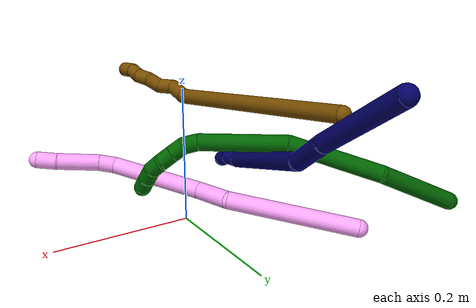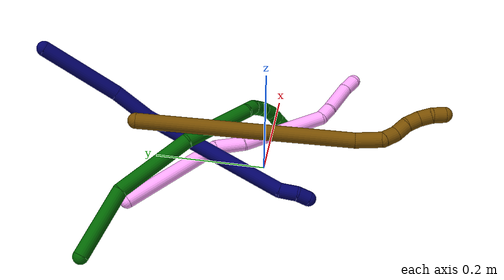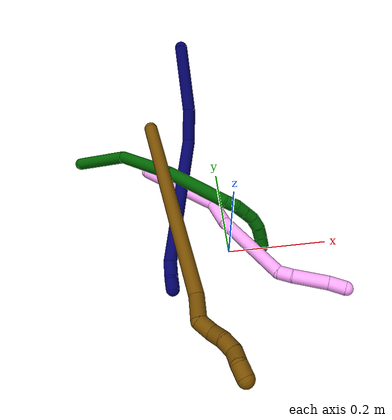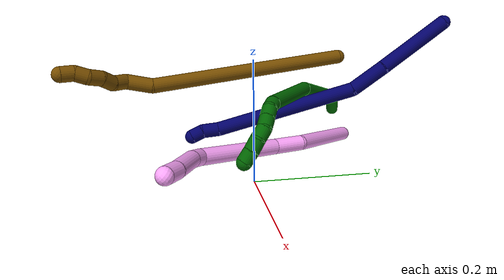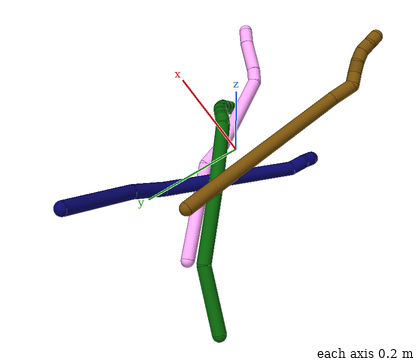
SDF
<sdf version="1.7">
 <world name="default">
  <model name="4">
   <static>0</static>
   <link name="4">
    <collision name="collision-cylinder-e_1_1_4">
     <pose>0.069429 -0.000526 0.059388 0.008852 0.863171 0.004077</pose>
     <geometry><cylinder><radius>0.0125</radius><length>0.18273</length></cylinder></geometry>
     <surface>
      <friction><ode><mu>1.16</mu><mu2>1.16</mu2><slip1>0</slip1><slip2>0</slip2></ode></friction>
      <contact><ode><kp>1e+06</kp><kd>1</kd><max_vel>0</max_vel><min_depth>0.001</min_depth></ode></contact>
     </surface>
    </collision>
    <visual name="visual-cylinder-e_1_1_4">
     <pose>0.069429 -0.000526 0.059388 0.008852 0.863171 0.004077</pose>
     <geometry><cylinder><radius>0.0125</radius><length>0.18273</length></cylinder></geometry>
     <material><ambient>1 0.65098 0.996078 1</ambient></material>
    </visual>
    <collision name="collision-cylinder-e_2_4_5">
     <pose>0.152251 -0.011666 0.137814 0.508608 0.550959 0.146684</pose>
     <geometry><cylinder><radius>0.0125</radius><length>0.051167</length></cylinder></geometry>
     <surface>
      <friction><ode><mu>1.16</mu><mu2>1.16</mu2><slip1>0</slip1><slip2>0</slip2></ode></friction>
      <contact><ode><kp>1e+06</kp><kd>1</kd><max_vel>0</max_vel><min_depth>0.001</min_depth></ode></contact>
     </surface>
    </collision>
    <visual name="visual-cylinder-e_2_4_5">
     <pose>0.152251 -0.011666 0.137814 0.508608 0.550959 0.146684</pose>
     <geometry><cylinder><radius>0.0125</radius><length>0.051167</length></cylinder></geometry>
     <material><ambient>1 0.65098 0.996078 1</ambient></material>
    </visual>
    <collision name="collision-cylinder-e_3_5_6">
     <pose>0.213329 -0.039301 0.21187 0.300034 0.691589 0.108804</pose>
     <geometry><cylinder><radius>0.0125</radius><length>0.149539</length></cylinder></geometry>
     <surface>
      <friction><ode><mu>1.16</mu><mu2>1.16</mu2><slip1>0</slip1><slip2>0</slip2></ode></friction>
      <contact><ode><kp>1e+06</kp><kd>1</kd><max_vel>0</max_vel><min_depth>0.001</min_depth></ode></contact>
     </surface>
    </collision>
    <visual name="visual-cylinder-e_3_5_6">
     <pose>0.213329 -0.039301 0.21187 0.300034 0.691589 0.108804</pose>
     <geometry><cylinder><radius>0.0125</radius><length>0.149539</length></cylinder></geometry>
     <material><ambient>1 0.65098 0.996078 1</ambient></material>
    </visual>
    <collision name="collision-cylinder-e_4_6_7">
     <pose>0.271293 -0.053797 0.2738 -0.350276 0.949383 -0.181365</pose>
     <geometry><cylinder><radius>0.0125</radius><length>0.025283</length></cylinder></geometry>
     <surface>
      <friction><ode><mu>1.16</mu><mu2>1.16</mu2><slip1>0</slip1><slip2>0</slip2></ode></friction>
      <contact><ode><kp>1e+06</kp><kd>1</kd><max_vel>0</max_vel><min_depth>0.001</min_depth></ode></contact>
     </surface>
    </collision>
    <visual name="visual-cylinder-e_4_6_7">
     <pose>0.271293 -0.053797 0.2738 -0.350276 0.949383 -0.181365</pose>
     <geometry><cylinder><radius>0.0125</radius><length>0.025283</length></cylinder></geometry>
     <material><ambient>1 0.65098 0.996078 1</ambient></material>
    </visual>
    <collision name="collision-cylinder-e_5_7_8">
     <pose>0.309022 -0.043868 0.293018 -0.54164 1.08879 -0.333067</pose>
     <geometry><cylinder><radius>0.0125</radius><length>0.06196</length></cylinder></geometry>
     <surface>
      <friction><ode><mu>1.16</mu><mu2>1.16</mu2><slip1>0</slip1><slip2>0</slip2></ode></friction>
      <contact><ode><kp>1e+06</kp><kd>1</kd><max_vel>0</max_vel><min_depth>0.001</min_depth></ode></contact>
     </surface>
    </collision>
    <visual name="visual-cylinder-e_5_7_8">
     <pose>0.309022 -0.043868 0.293018 -0.54164 1.08879 -0.333067</pose>
     <geometry><cylinder><radius>0.0125</radius><length>0.06196</length></cylinder></geometry>
     <material><ambient>1 0.65098 0.996078 1</ambient></material>
    </visual>
    <collision name="collision-cylinder-e_6_8_2">
     <pose>0.349063 -0.034323 0.312522 -0.289057 1.03297 -0.164934</pose>
     <geometry><cylinder><radius>0.0125</radius><length>0.029321</length></cylinder></geometry>
     <surface>
      <friction><ode><mu>1.16</mu><mu2>1.16</mu2><slip1>0</slip1><slip2>0</slip2></ode></friction>
      <contact><ode><kp>1e+06</kp><kd>1</kd><max_vel>0</max_vel><min_depth>0.001</min_depth></ode></contact>
     </surface>
    </collision>
    <visual name="visual-cylinder-e_6_8_2">
     <pose>0.349063 -0.034323 0.312522 -0.289057 1.03297 -0.164934</pose>
     <geometry><cylinder><radius>0.0125</radius><length>0.029321</length></cylinder></geometry>
     <material><ambient>1 0.65098 0.996078 1</ambient></material>
    </visual>
    <collision name="collision-sphere-2">
     <pose>0.361653 -0.032182 0.319721 0 -0 0</pose>
     <geometry><sphere><radius>0.0125</radius></sphere></geometry>
     <surface>
      <friction><ode><mu>1.16</mu><mu2>1.16</mu2><slip1>0</slip1><slip2>0</slip2></ode></friction>
      <contact><ode><kp>1e+06</kp><kd>1</kd><max_vel>0</max_vel><min_depth>0.001</min_depth></ode></contact>
     </surface>
    </collision>
    <visual name="visual-sphere-2">
     <pose>0.361653 -0.032182 0.319721 0 -0 0</pose>
     <geometry><sphere><radius>0.0125</radius></sphere></geometry>
     <material><ambient>1 0.65098 0.996078 1</ambient></material>
    </visual>
    <collision name="collision-sphere-4">
     <pose>0.138858 -0.001051 0.118776 0 -0 0</pose>
     <geometry><sphere><radius>0.0125</radius></sphere></geometry>
     <surface>
      <friction><ode><mu>1.16</mu><mu2>1.16</mu2><slip1>0</slip1><slip2>0</slip2></ode></friction>
      <contact><ode><kp>1e+06</kp><kd>1</kd><max_vel>0</max_vel><min_depth>0.001</min_depth></ode></contact>
     </surface>
    </collision>
    <visual name="visual-sphere-4">
     <pose>0.138858 -0.001051 0.118776 0 -0 0</pose>
     <geometry><sphere><radius>0.0125</radius></sphere></geometry>
     <material><ambient>1 0.65098 0.996078 1</ambient></material>
    </visual>
    <collision name="collision-sphere-1">
     <geometry><sphere><radius>0.0125</radius></sphere></geometry>
     <surface>
      <friction><ode><mu>1.16</mu><mu2>1.16</mu2><slip1>0</slip1><slip2>0</slip2></ode></friction>
      <contact><ode><kp>1e+06</kp><kd>1</kd><max_vel>0</max_vel><min_depth>0.001</min_depth></ode></contact>
     </surface>
    </collision>
    <visual name="visual-sphere-1">
     <geometry><sphere><radius>0.0125</radius></sphere></geometry>
     <material><ambient>1 0.65098 0.996078 1</ambient></material>
    </visual>
    <collision name="collision-sphere-8">
     <pose>0.336472 -0.036464 0.305324 0 -0 0</pose>
     <geometry><sphere><radius>0.0125</radius></sphere></geometry>
     <surface>
      <friction><ode><mu>1.16</mu><mu2>1.16</mu2><slip1>0</slip1><slip2>0</slip2></ode></friction>
      <contact><ode><kp>1e+06</kp><kd>1</kd><max_vel>0</max_vel><min_depth>0.001</min_depth></ode></contact>
     </surface>
    </collision>
    <visual name="visual-sphere-8">
     <pose>0.336472 -0.036464 0.305324 0 -0 0</pose>
     <geometry><sphere><radius>0.0125</radius></sphere></geometry>
     <material><ambient>1 0.65098 0.996078 1</ambient></material>
    </visual>
    <collision name="collision-sphere-5">
     <pose>0.165644 -0.022281 0.156853 0 -0 0</pose>
     <geometry><sphere><radius>0.0125</radius></sphere></geometry>
     <surface>
      <friction><ode><mu>1.16</mu><mu2>1.16</mu2><slip1>0</slip1><slip2>0</slip2></ode></friction>
      <contact><ode><kp>1e+06</kp><kd>1</kd><max_vel>0</max_vel><min_depth>0.001</min_depth></ode></contact>
     </surface>
    </collision>
    <visual name="visual-sphere-5">
     <pose>0.165644 -0.022281 0.156853 0 -0 0</pose>
     <geometry><sphere><radius>0.0125</radius></sphere></geometry>
     <material><ambient>1 0.65098 0.996078 1</ambient></material>
    </visual>
    <collision name="collision-sphere-6">
     <pose>0.261014 -0.056322 0.266887 0 -0 0</pose>
     <geometry><sphere><radius>0.0125</radius></sphere></geometry>
     <surface>
      <friction><ode><mu>1.16</mu><mu2>1.16</mu2><slip1>0</slip1><slip2>0</slip2></ode></friction>
      <contact><ode><kp>1e+06</kp><kd>1</kd><max_vel>0</max_vel><min_depth>0.001</min_depth></ode></contact>
     </surface>
    </collision>
    <visual name="visual-sphere-6">
     <pose>0.261014 -0.056322 0.266887 0 -0 0</pose>
     <geometry><sphere><radius>0.0125</radius></sphere></geometry>
     <material><ambient>1 0.65098 0.996078 1</ambient></material>
    </visual>
    <collision name="collision-sphere-7">
     <pose>0.281571 -0.051271 0.280713 0 -0 0</pose>
     <geometry><sphere><radius>0.0125</radius></sphere></geometry>
     <surface>
      <friction><ode><mu>1.16</mu><mu2>1.16</mu2><slip1>0</slip1><slip2>0</slip2></ode></friction>
      <contact><ode><kp>1e+06</kp><kd>1</kd><max_vel>0</max_vel><min_depth>0.001</min_depth></ode></contact>
     </surface>
    </collision>
    <visual name="visual-sphere-7">
     <pose>0.281571 -0.051271 0.280713 0 -0 0</pose>
     <geometry><sphere><radius>0.0125</radius></sphere></geometry>
     <material><ambient>1 0.65098 0.996078 1</ambient></material>
    </visual>
    <inertial>
     <pose>0.177238 -0.023309 0.167655 0 -0 0</pose>
     <mass>0.5</mass>
     <inertia>
      <ixx>0.000628</ixx>
      <ixy>0</ixy>
      <ixz>0</ixz>
      <iyy>0.000851</iyy>
      <iyz>0</iyz>
      <izz>-0.000513</izz>
     </inertia>
    </inertial>
   </link>
   <pose>-0.15458 0.206914 0.027983 0.777547 0.377371 -0.27014</pose>
  </model>
  <model name="6">
   <static>0</static>
   <link name="6">
    <collision name="collision-cylinder-e_1_1_4">
     <pose>-0.017415 0.016102 -0.053927 -2.85142 -0.300092 1.6049</pose>
     <geometry><cylinder><radius>0.0125</radius><length>0.117825</length></cylinder></geometry>
     <surface>
      <friction><ode><mu>1.16</mu><mu2>1.16</mu2><slip1>0</slip1><slip2>0</slip2></ode></friction>
      <contact><ode><kp>1e+06</kp><kd>1</kd><max_vel>0</max_vel><min_depth>0.001</min_depth></ode></contact>
     </surface>
    </collision>
    <visual name="visual-cylinder-e_1_1_4">
     <pose>-0.017415 0.016102 -0.053927 -2.85142 -0.300092 1.6049</pose>
     <geometry><cylinder><radius>0.0125</radius><length>0.117825</length></cylinder></geometry>
     <material><ambient>0 0.392157 0.003922 1</ambient></material>
    </visual>
    <collision name="collision-cylinder-e_2_4_5">
     <pose>-0.0282 0.05376 -0.170716 -2.81127 0.099434 -0.580207</pose>
     <geometry><cylinder><radius>0.0125</radius><length>0.13357</length></cylinder></geometry>
     <surface>
      <friction><ode><mu>1.16</mu><mu2>1.16</mu2><slip1>0</slip1><slip2>0</slip2></ode></friction>
      <contact><ode><kp>1e+06</kp><kd>1</kd><max_vel>0</max_vel><min_depth>0.001</min_depth></ode></contact>
     </surface>
    </collision>
    <visual name="visual-cylinder-e_2_4_5">
     <pose>-0.0282 0.05376 -0.170716 -2.81127 0.099434 -0.580207</pose>
     <geometry><cylinder><radius>0.0125</radius><length>0.13357</length></cylinder></geometry>
     <material><ambient>0 0.392157 0.003922 1</ambient></material>
    </visual>
    <collision name="collision-cylinder-e_3_5_6">
     <pose>-0.009106 0.078104 -0.295834 -3.09681 0.19741 -2.69676</pose>
     <geometry><cylinder><radius>0.0125</radius><length>0.127104</length></cylinder></geometry>
     <surface>
      <friction><ode><mu>1.16</mu><mu2>1.16</mu2><slip1>0</slip1><slip2>0</slip2></ode></friction>
      <contact><ode><kp>1e+06</kp><kd>1</kd><max_vel>0</max_vel><min_depth>0.001</min_depth></ode></contact>
     </surface>
    </collision>
    <visual name="visual-cylinder-e_3_5_6">
     <pose>-0.009106 0.078104 -0.295834 -3.09681 0.19741 -2.69676</pose>
     <geometry><cylinder><radius>0.0125</radius><length>0.127104</length></cylinder></geometry>
     <material><ambient>0 0.392157 0.003922 1</ambient></material>
    </visual>
    <collision name="collision-cylinder-e_4_6_7">
     <pose>0.004518 0.07849 -0.368128 2.90656 0.111852 0.885585</pose>
     <geometry><cylinder><radius>0.0125</radius><length>0.020776</length></cylinder></geometry>
     <surface>
      <friction><ode><mu>1.16</mu><mu2>1.16</mu2><slip1>0</slip1><slip2>0</slip2></ode></friction>
      <contact><ode><kp>1e+06</kp><kd>1</kd><max_vel>0</max_vel><min_depth>0.001</min_depth></ode></contact>
     </surface>
    </collision>
    <visual name="visual-cylinder-e_4_6_7">
     <pose>0.004518 0.07849 -0.368128 2.90656 0.111852 0.885585</pose>
     <geometry><cylinder><radius>0.0125</radius><length>0.020776</length></cylinder></geometry>
     <material><ambient>0 0.392157 0.003922 1</ambient></material>
    </visual>
    <collision name="collision-cylinder-e_5_7_8">
     <pose>0.00847 0.070612 -0.38613 2.53939 0.281335 0.855635</pose>
     <geometry><cylinder><radius>0.0125</radius><length>0.020116</length></cylinder></geometry>
     <surface>
      <friction><ode><mu>1.16</mu><mu2>1.16</mu2><slip1>0</slip1><slip2>0</slip2></ode></friction>
      <contact><ode><kp>1e+06</kp><kd>1</kd><max_vel>0</max_vel><min_depth>0.001</min_depth></ode></contact>
     </surface>
    </collision>
    <visual name="visual-cylinder-e_5_7_8">
     <pose>0.00847 0.070612 -0.38613 2.53939 0.281335 0.855635</pose>
     <geometry><cylinder><radius>0.0125</radius><length>0.020116</length></cylinder></geometry>
     <material><ambient>0 0.392157 0.003922 1</ambient></material>
    </visual>
    <collision name="collision-cylinder-e_6_8_9">
     <pose>0.014244 0.059512 -0.401912 2.51776 0.300143 0.87699</pose>
     <geometry><cylinder><radius>0.0125</radius><length>0.020169</length></cylinder></geometry>
     <surface>
      <friction><ode><mu>1.16</mu><mu2>1.16</mu2><slip1>0</slip1><slip2>0</slip2></ode></friction>
      <contact><ode><kp>1e+06</kp><kd>1</kd><max_vel>0</max_vel><min_depth>0.001</min_depth></ode></contact>
     </surface>
    </collision>
    <visual name="visual-cylinder-e_6_8_9">
     <pose>0.014244 0.059512 -0.401912 2.51776 0.300143 0.87699</pose>
     <geometry><cylinder><radius>0.0125</radius><length>0.020169</length></cylinder></geometry>
     <material><ambient>0 0.392157 0.003922 1</ambient></material>
    </visual>
    <collision name="collision-cylinder-e_7_9_10">
     <pose>0.023262 0.049163 -0.416456 2.52953 0.633575 1.60767</pose>
     <geometry><cylinder><radius>0.0125</radius><length>0.020392</length></cylinder></geometry>
     <surface>
      <friction><ode><mu>1.16</mu><mu2>1.16</mu2><slip1>0</slip1><slip2>0</slip2></ode></friction>
      <contact><ode><kp>1e+06</kp><kd>1</kd><max_vel>0</max_vel><min_depth>0.001</min_depth></ode></contact>
     </surface>
    </collision>
    <visual name="visual-cylinder-e_7_9_10">
     <pose>0.023262 0.049163 -0.416456 2.52953 0.633575 1.60767</pose>
     <geometry><cylinder><radius>0.0125</radius><length>0.020392</length></cylinder></geometry>
     <material><ambient>0 0.392157 0.003922 1</ambient></material>
    </visual>
    <collision name="collision-cylinder-e_8_10_11">
     <pose>0.036648 0.038873 -0.427074 2.18075 0.824625 1.39646</pose>
     <geometry><cylinder><radius>0.0125</radius><length>0.020017</length></cylinder></geometry>
     <surface>
      <friction><ode><mu>1.16</mu><mu2>1.16</mu2><slip1>0</slip1><slip2>0</slip2></ode></friction>
      <contact><ode><kp>1e+06</kp><kd>1</kd><max_vel>0</max_vel><min_depth>0.001</min_depth></ode></contact>
     </surface>
    </collision>
    <visual name="visual-cylinder-e_8_10_11">
     <pose>0.036648 0.038873 -0.427074 2.18075 0.824625 1.39646</pose>
     <geometry><cylinder><radius>0.0125</radius><length>0.020017</length></cylinder></geometry>
     <material><ambient>0 0.392157 0.003922 1</ambient></material>
    </visual>
    <collision name="collision-cylinder-e_9_11_2">
     <pose>0.051901 0.028202 -0.434401 2.16346 0.909559 1.48618</pose>
     <geometry><cylinder><radius>0.0125</radius><length>0.020031</length></cylinder></geometry>
     <surface>
      <friction><ode><mu>1.16</mu><mu2>1.16</mu2><slip1>0</slip1><slip2>0</slip2></ode></friction>
      <contact><ode><kp>1e+06</kp><kd>1</kd><max_vel>0</max_vel><min_depth>0.001</min_depth></ode></contact>
     </surface>
    </collision>
    <visual name="visual-cylinder-e_9_11_2">
     <pose>0.051901 0.028202 -0.434401 2.16346 0.909559 1.48618</pose>
     <geometry><cylinder><radius>0.0125</radius><length>0.020031</length></cylinder></geometry>
     <material><ambient>0 0.392157 0.003922 1</ambient></material>
    </visual>
    <collision name="collision-sphere-2">
     <pose>0.059806 0.0231 -0.437837 0 -0 0</pose>
     <geometry><sphere><radius>0.0125</radius></sphere></geometry>
     <surface>
      <friction><ode><mu>1.16</mu><mu2>1.16</mu2><slip1>0</slip1><slip2>0</slip2></ode></friction>
      <contact><ode><kp>1e+06</kp><kd>1</kd><max_vel>0</max_vel><min_depth>0.001</min_depth></ode></contact>
     </surface>
    </collision>
    <visual name="visual-sphere-2">
     <pose>0.059806 0.0231 -0.437837 0 -0 0</pose>
     <geometry><sphere><radius>0.0125</radius></sphere></geometry>
     <material><ambient>0 0.392157 0.003922 1</ambient></material>
    </visual>
    <collision name="collision-sphere-11">
     <pose>0.043997 0.033303 -0.430966 0 -0 0</pose>
     <geometry><sphere><radius>0.0125</radius></sphere></geometry>
     <surface>
      <friction><ode><mu>1.16</mu><mu2>1.16</mu2><slip1>0</slip1><slip2>0</slip2></ode></friction>
      <contact><ode><kp>1e+06</kp><kd>1</kd><max_vel>0</max_vel><min_depth>0.001</min_depth></ode></contact>
     </surface>
    </collision>
    <visual name="visual-sphere-11">
     <pose>0.043997 0.033303 -0.430966 0 -0 0</pose>
     <geometry><sphere><radius>0.0125</radius></sphere></geometry>
     <material><ambient>0 0.392157 0.003922 1</ambient></material>
    </visual>
    <collision name="collision-sphere-10">
     <pose>0.029298 0.044442 -0.423182 0 -0 0</pose>
     <geometry><sphere><radius>0.0125</radius></sphere></geometry>
     <surface>
      <friction><ode><mu>1.16</mu><mu2>1.16</mu2><slip1>0</slip1><slip2>0</slip2></ode></friction>
      <contact><ode><kp>1e+06</kp><kd>1</kd><max_vel>0</max_vel><min_depth>0.001</min_depth></ode></contact>
     </surface>
    </collision>
    <visual name="visual-sphere-10">
     <pose>0.029298 0.044442 -0.423182 0 -0 0</pose>
     <geometry><sphere><radius>0.0125</radius></sphere></geometry>
     <material><ambient>0 0.392157 0.003922 1</ambient></material>
    </visual>
    <collision name="collision-sphere-9">
     <pose>0.017225 0.053884 -0.409731 0 -0 0</pose>
     <geometry><sphere><radius>0.0125</radius></sphere></geometry>
     <surface>
      <friction><ode><mu>1.16</mu><mu2>1.16</mu2><slip1>0</slip1><slip2>0</slip2></ode></friction>
      <contact><ode><kp>1e+06</kp><kd>1</kd><max_vel>0</max_vel><min_depth>0.001</min_depth></ode></contact>
     </surface>
    </collision>
    <visual name="visual-sphere-9">
     <pose>0.017225 0.053884 -0.409731 0 -0 0</pose>
     <geometry><sphere><radius>0.0125</radius></sphere></geometry>
     <material><ambient>0 0.392157 0.003922 1</ambient></material>
    </visual>
    <collision name="collision-sphere-4">
     <pose>-0.03483 0.032205 -0.107853 0 -0 0</pose>
     <geometry><sphere><radius>0.0125</radius></sphere></geometry>
     <surface>
      <friction><ode><mu>1.16</mu><mu2>1.16</mu2><slip1>0</slip1><slip2>0</slip2></ode></friction>
      <contact><ode><kp>1e+06</kp><kd>1</kd><max_vel>0</max_vel><min_depth>0.001</min_depth></ode></contact>
     </surface>
    </collision>
    <visual name="visual-sphere-4">
     <pose>-0.03483 0.032205 -0.107853 0 -0 0</pose>
     <geometry><sphere><radius>0.0125</radius></sphere></geometry>
     <material><ambient>0 0.392157 0.003922 1</ambient></material>
    </visual>
    <collision name="collision-sphere-1">
     <geometry><sphere><radius>0.0125</radius></sphere></geometry>
     <surface>
      <friction><ode><mu>1.16</mu><mu2>1.16</mu2><slip1>0</slip1><slip2>0</slip2></ode></friction>
      <contact><ode><kp>1e+06</kp><kd>1</kd><max_vel>0</max_vel><min_depth>0.001</min_depth></ode></contact>
     </surface>
    </collision>
    <visual name="visual-sphere-1">
     <geometry><sphere><radius>0.0125</radius></sphere></geometry>
     <material><ambient>0 0.392157 0.003922 1</ambient></material>
    </visual>
    <collision name="collision-sphere-8">
     <pose>0.011262 0.065139 -0.394093 0 -0 0</pose>
     <geometry><sphere><radius>0.0125</radius></sphere></geometry>
     <surface>
      <friction><ode><mu>1.16</mu><mu2>1.16</mu2><slip1>0</slip1><slip2>0</slip2></ode></friction>
      <contact><ode><kp>1e+06</kp><kd>1</kd><max_vel>0</max_vel><min_depth>0.001</min_depth></ode></contact>
     </surface>
    </collision>
    <visual name="visual-sphere-8">
     <pose>0.011262 0.065139 -0.394093 0 -0 0</pose>
     <geometry><sphere><radius>0.0125</radius></sphere></geometry>
     <material><ambient>0 0.392157 0.003922 1</ambient></material>
    </visual>
    <collision name="collision-sphere-5">
     <pose>-0.02157 0.075314 -0.233579 0 -0 0</pose>
     <geometry><sphere><radius>0.0125</radius></sphere></geometry>
     <surface>
      <friction><ode><mu>1.16</mu><mu2>1.16</mu2><slip1>0</slip1><slip2>0</slip2></ode></friction>
      <contact><ode><kp>1e+06</kp><kd>1</kd><max_vel>0</max_vel><min_depth>0.001</min_depth></ode></contact>
     </surface>
    </collision>
    <visual name="visual-sphere-5">
     <pose>-0.02157 0.075314 -0.233579 0 -0 0</pose>
     <geometry><sphere><radius>0.0125</radius></sphere></geometry>
     <material><ambient>0 0.392157 0.003922 1</ambient></material>
    </visual>
    <collision name="collision-sphere-6">
     <pose>0.003358 0.080894 -0.358089 0 -0 0</pose>
     <geometry><sphere><radius>0.0125</radius></sphere></geometry>
     <surface>
      <friction><ode><mu>1.16</mu><mu2>1.16</mu2><slip1>0</slip1><slip2>0</slip2></ode></friction>
      <contact><ode><kp>1e+06</kp><kd>1</kd><max_vel>0</max_vel><min_depth>0.001</min_depth></ode></contact>
     </surface>
    </collision>
    <visual name="visual-sphere-6">
     <pose>0.003358 0.080894 -0.358089 0 -0 0</pose>
     <geometry><sphere><radius>0.0125</radius></sphere></geometry>
     <material><ambient>0 0.392157 0.003922 1</ambient></material>
    </visual>
    <collision name="collision-sphere-7">
     <pose>0.005677 0.076086 -0.378167 0 -0 0</pose>
     <geometry><sphere><radius>0.0125</radius></sphere></geometry>
     <surface>
      <friction><ode><mu>1.16</mu><mu2>1.16</mu2><slip1>0</slip1><slip2>0</slip2></ode></friction>
      <contact><ode><kp>1e+06</kp><kd>1</kd><max_vel>0</max_vel><min_depth>0.001</min_depth></ode></contact>
     </surface>
    </collision>
    <visual name="visual-sphere-7">
     <pose>0.005677 0.076086 -0.378167 0 -0 0</pose>
     <geometry><sphere><radius>0.0125</radius></sphere></geometry>
     <material><ambient>0 0.392157 0.003922 1</ambient></material>
    </visual>
    <inertial>
     <pose>-0.008354 0.051205 -0.232045 0 -0 0</pose>
     <mass>0.5</mass>
     <inertia>
      <ixx>-2.8e-05</ixx>
      <ixy>0</ixy>
      <ixz>0</ixz>
      <iyy>-2.4e-05</iyy>
      <iyz>0</iyz>
      <izz>-0.000159</izz>
     </inertia>
    </inertial>
   </link>
   <pose>-0.300546 0.234549 0.044725 1.61792 0.50221 -2.0318</pose>
  </model>
  <model name="7">
   <static>0</static>
   <link name="7">
    <collision name="collision-cylinder-e_1_1_4">
     <pose>-0.031196 -0.059014 -0.008201 1.70888 -0.482338 -0.550654</pose>
     <geometry><cylinder><radius>0.0125</radius><length>0.134507</length></cylinder></geometry>
     <surface>
      <friction><ode><mu>1.16</mu><mu2>1.16</mu2><slip1>0</slip1><slip2>0</slip2></ode></friction>
      <contact><ode><kp>1e+06</kp><kd>1</kd><max_vel>0</max_vel><min_depth>0.001</min_depth></ode></contact>
     </surface>
    </collision>
    <visual name="visual-cylinder-e_1_1_4">
     <pose>-0.031196 -0.059014 -0.008201 1.70888 -0.482338 -0.550654</pose>
     <geometry><cylinder><radius>0.0125</radius><length>0.134507</length></cylinder></geometry>
     <material><ambient>0.003922 0 0.403922 1</ambient></material>
    </visual>
    <collision name="collision-cylinder-e_2_4_5">
     <pose>-0.078851 -0.146047 -0.016293 1.56689 -0.531131 -0.529159</pose>
     <geometry><cylinder><radius>0.0125</radius><length>0.064993</length></cylinder></geometry>
     <surface>
      <friction><ode><mu>1.16</mu><mu2>1.16</mu2><slip1>0</slip1><slip2>0</slip2></ode></friction>
      <contact><ode><kp>1e+06</kp><kd>1</kd><max_vel>0</max_vel><min_depth>0.001</min_depth></ode></contact>
     </surface>
    </collision>
    <visual name="visual-cylinder-e_2_4_5">
     <pose>-0.078851 -0.146047 -0.016293 1.56689 -0.531131 -0.529159</pose>
     <geometry><cylinder><radius>0.0125</radius><length>0.064993</length></cylinder></geometry>
     <material><ambient>0.003922 0 0.403922 1</ambient></material>
    </visual>
    <collision name="collision-cylinder-e_3_5_6">
     <pose>-0.124338 -0.293576 0.006013 1.38716 -0.234406 -0.195154</pose>
     <geometry><cylinder><radius>0.0125</radius><length>0.249944</length></cylinder></geometry>
     <surface>
      <friction><ode><mu>1.16</mu><mu2>1.16</mu2><slip1>0</slip1><slip2>0</slip2></ode></friction>
      <contact><ode><kp>1e+06</kp><kd>1</kd><max_vel>0</max_vel><min_depth>0.001</min_depth></ode></contact>
     </surface>
    </collision>
    <visual name="visual-cylinder-e_3_5_6">
     <pose>-0.124338 -0.293576 0.006013 1.38716 -0.234406 -0.195154</pose>
     <geometry><cylinder><radius>0.0125</radius><length>0.249944</length></cylinder></geometry>
     <material><ambient>0.003922 0 0.403922 1</ambient></material>
    </visual>
    <collision name="collision-cylinder-e_4_6_7">
     <pose>-0.153121 -0.42793 0.028012 1.58411 0.016384 0.016603</pose>
     <geometry><cylinder><radius>0.0125</radius><length>0.029693</length></cylinder></geometry>
     <surface>
      <friction><ode><mu>1.16</mu><mu2>1.16</mu2><slip1>0</slip1><slip2>0</slip2></ode></friction>
      <contact><ode><kp>1e+06</kp><kd>1</kd><max_vel>0</max_vel><min_depth>0.001</min_depth></ode></contact>
     </surface>
    </collision>
    <visual name="visual-cylinder-e_4_6_7">
     <pose>-0.153121 -0.42793 0.028012 1.58411 0.016384 0.016603</pose>
     <geometry><cylinder><radius>0.0125</radius><length>0.029693</length></cylinder></geometry>
     <material><ambient>0.003922 0 0.403922 1</ambient></material>
    </visual>
    <collision name="collision-cylinder-e_5_7_2">
     <pose>-0.156146 -0.452609 0.026632 1.69048 -0.318702 -0.358508</pose>
     <geometry><cylinder><radius>0.0125</radius><length>0.020863</length></cylinder></geometry>
     <surface>
      <friction><ode><mu>1.16</mu><mu2>1.16</mu2><slip1>0</slip1><slip2>0</slip2></ode></friction>
      <contact><ode><kp>1e+06</kp><kd>1</kd><max_vel>0</max_vel><min_depth>0.001</min_depth></ode></contact>
     </surface>
    </collision>
    <visual name="visual-cylinder-e_5_7_2">
     <pose>-0.156146 -0.452609 0.026632 1.69048 -0.318702 -0.358508</pose>
     <geometry><cylinder><radius>0.0125</radius><length>0.020863</length></cylinder></geometry>
     <material><ambient>0.003922 0 0.403922 1</ambient></material>
    </visual>
    <collision name="collision-sphere-2">
     <pose>-0.159415 -0.462444 0.025449 0 -0 0</pose>
     <geometry><sphere><radius>0.0125</radius></sphere></geometry>
     <surface>
      <friction><ode><mu>1.16</mu><mu2>1.16</mu2><slip1>0</slip1><slip2>0</slip2></ode></friction>
      <contact><ode><kp>1e+06</kp><kd>1</kd><max_vel>0</max_vel><min_depth>0.001</min_depth></ode></contact>
     </surface>
    </collision>
    <visual name="visual-sphere-2">
     <pose>-0.159415 -0.462444 0.025449 0 -0 0</pose>
     <geometry><sphere><radius>0.0125</radius></sphere></geometry>
     <material><ambient>0.003922 0 0.403922 1</ambient></material>
    </visual>
    <collision name="collision-sphere-7">
     <pose>-0.152878 -0.442773 0.027815 0 -0 0</pose>
     <geometry><sphere><radius>0.0125</radius></sphere></geometry>
     <surface>
      <friction><ode><mu>1.16</mu><mu2>1.16</mu2><slip1>0</slip1><slip2>0</slip2></ode></friction>
      <contact><ode><kp>1e+06</kp><kd>1</kd><max_vel>0</max_vel><min_depth>0.001</min_depth></ode></contact>
     </surface>
    </collision>
    <visual name="visual-sphere-7">
     <pose>-0.152878 -0.442773 0.027815 0 -0 0</pose>
     <geometry><sphere><radius>0.0125</radius></sphere></geometry>
     <material><ambient>0.003922 0 0.403922 1</ambient></material>
    </visual>
    <collision name="collision-sphere-6">
     <pose>-0.153364 -0.413087 0.02821 0 -0 0</pose>
     <geometry><sphere><radius>0.0125</radius></sphere></geometry>
     <surface>
      <friction><ode><mu>1.16</mu><mu2>1.16</mu2><slip1>0</slip1><slip2>0</slip2></ode></friction>
      <contact><ode><kp>1e+06</kp><kd>1</kd><max_vel>0</max_vel><min_depth>0.001</min_depth></ode></contact>
     </surface>
    </collision>
    <visual name="visual-sphere-6">
     <pose>-0.153364 -0.413087 0.02821 0 -0 0</pose>
     <geometry><sphere><radius>0.0125</radius></sphere></geometry>
     <material><ambient>0.003922 0 0.403922 1</ambient></material>
    </visual>
    <collision name="collision-sphere-5">
     <pose>-0.095311 -0.174066 -0.016184 0 -0 0</pose>
     <geometry><sphere><radius>0.0125</radius></sphere></geometry>
     <surface>
      <friction><ode><mu>1.16</mu><mu2>1.16</mu2><slip1>0</slip1><slip2>0</slip2></ode></friction>
      <contact><ode><kp>1e+06</kp><kd>1</kd><max_vel>0</max_vel><min_depth>0.001</min_depth></ode></contact>
     </surface>
    </collision>
    <visual name="visual-sphere-5">
     <pose>-0.095311 -0.174066 -0.016184 0 -0 0</pose>
     <geometry><sphere><radius>0.0125</radius></sphere></geometry>
     <material><ambient>0.003922 0 0.403922 1</ambient></material>
    </visual>
    <collision name="collision-sphere-1">
     <geometry><sphere><radius>0.0125</radius></sphere></geometry>
     <surface>
      <friction><ode><mu>1.16</mu><mu2>1.16</mu2><slip1>0</slip1><slip2>0</slip2></ode></friction>
      <contact><ode><kp>1e+06</kp><kd>1</kd><max_vel>0</max_vel><min_depth>0.001</min_depth></ode></contact>
     </surface>
    </collision>
    <visual name="visual-sphere-1">
     <geometry><sphere><radius>0.0125</radius></sphere></geometry>
     <material><ambient>0.003922 0 0.403922 1</ambient></material>
    </visual>
    <collision name="collision-sphere-4">
     <pose>-0.062391 -0.118027 -0.016403 0 -0 0</pose>
     <geometry><sphere><radius>0.0125</radius></sphere></geometry>
     <surface>
      <friction><ode><mu>1.16</mu><mu2>1.16</mu2><slip1>0</slip1><slip2>0</slip2></ode></friction>
      <contact><ode><kp>1e+06</kp><kd>1</kd><max_vel>0</max_vel><min_depth>0.001</min_depth></ode></contact>
     </surface>
    </collision>
    <visual name="visual-sphere-4">
     <pose>-0.062391 -0.118027 -0.016403 0 -0 0</pose>
     <geometry><sphere><radius>0.0125</radius></sphere></geometry>
     <material><ambient>0.003922 0 0.403922 1</ambient></material>
    </visual>
    <inertial>
     <pose>-0.096405 -0.225913 0.001456 0 -0 0</pose>
     <mass>0.5</mass>
     <inertia>
      <ixx>0.001064</ixx>
      <ixy>0</ixy>
      <ixz>0</ixz>
      <iyy>-6.6e-05</iyy>
      <iyz>0</iyz>
      <izz>0.001879</izz>
     </inertia>
    </inertial>
   </link>
   <pose>-0.057919 0.3517 0.249393 0.595489 -1.38528 -0.611263</pose>
  </model>
  <model name="12">
   <static>0</static>
   <link name="12">
    <collision name="collision-cylinder-e_1_1_4">
     <pose>0.00236 -0.122215 -0.121531 2.35339 0.013692 0.032922</pose>
     <geometry><cylinder><radius>0.0125</radius><length>0.344741</length></cylinder></geometry>
     <surface>
      <friction><ode><mu>1.16</mu><mu2>1.16</mu2><slip1>0</slip1><slip2>0</slip2></ode></friction>
      <contact><ode><kp>1e+06</kp><kd>1</kd><max_vel>0</max_vel><min_depth>0.001</min_depth></ode></contact>
     </surface>
    </collision>
    <visual name="visual-cylinder-e_1_1_4">
     <pose>0.00236 -0.122215 -0.121531 2.35339 0.013692 0.032922</pose>
     <geometry><cylinder><radius>0.0125</radius><length>0.344741</length></cylinder></geometry>
     <material><ambient>0.466667 0.301961 0 1</ambient></material>
    </visual>
    <collision name="collision-cylinder-e_2_4_5">
     <pose>0.003358 -0.264097 -0.252416 2.01474 -0.062443 -0.098796</pose>
     <geometry><cylinder><radius>0.0125</radius><length>0.043643</length></cylinder></geometry>
     <surface>
      <friction><ode><mu>1.16</mu><mu2>1.16</mu2><slip1>0</slip1><slip2>0</slip2></ode></friction>
      <contact><ode><kp>1e+06</kp><kd>1</kd><max_vel>0</max_vel><min_depth>0.001</min_depth></ode></contact>
     </surface>
    </collision>
    <visual name="visual-cylinder-e_2_4_5">
     <pose>0.003358 -0.264097 -0.252416 2.01474 -0.062443 -0.098796</pose>
     <geometry><cylinder><radius>0.0125</radius><length>0.043643</length></cylinder></geometry>
     <material><ambient>0.466667 0.301961 0 1</ambient></material>
    </visual>
    <collision name="collision-cylinder-e_3_5_6">
     <pose>0.009267 -0.290439 -0.269862 2.45191 0.606083 1.43253</pose>
     <geometry><cylinder><radius>0.0125</radius><length>0.025525</length></cylinder></geometry>
     <surface>
      <friction><ode><mu>1.16</mu><mu2>1.16</mu2><slip1>0</slip1><slip2>0</slip2></ode></friction>
      <contact><ode><kp>1e+06</kp><kd>1</kd><max_vel>0</max_vel><min_depth>0.001</min_depth></ode></contact>
     </surface>
    </collision>
    <visual name="visual-cylinder-e_3_5_6">
     <pose>0.009267 -0.290439 -0.269862 2.45191 0.606083 1.43253</pose>
     <geometry><cylinder><radius>0.0125</radius><length>0.025525</length></cylinder></geometry>
     <material><ambient>0.466667 0.301961 0 1</ambient></material>
    </visual>
    <collision name="collision-cylinder-e_4_6_7">
     <pose>0.023687 -0.305737 -0.28065 1.87385 0.669432 0.883893</pose>
     <geometry><cylinder><radius>0.0125</radius><length>0.023044</length></cylinder></geometry>
     <surface>
      <friction><ode><mu>1.16</mu><mu2>1.16</mu2><slip1>0</slip1><slip2>0</slip2></ode></friction>
      <contact><ode><kp>1e+06</kp><kd>1</kd><max_vel>0</max_vel><min_depth>0.001</min_depth></ode></contact>
     </surface>
    </collision>
    <visual name="visual-cylinder-e_4_6_7">
     <pose>0.023687 -0.305737 -0.28065 1.87385 0.669432 0.883893</pose>
     <geometry><cylinder><radius>0.0125</radius><length>0.023044</length></cylinder></geometry>
     <material><ambient>0.466667 0.301961 0 1</ambient></material>
    </visual>
    <collision name="collision-cylinder-e_5_7_8">
     <pose>0.03619 -0.322538 -0.288921 2.1691 0.495867 0.893268</pose>
     <geometry><cylinder><radius>0.0125</radius><length>0.022504</length></cylinder></geometry>
     <surface>
      <friction><ode><mu>1.16</mu><mu2>1.16</mu2><slip1>0</slip1><slip2>0</slip2></ode></friction>
      <contact><ode><kp>1e+06</kp><kd>1</kd><max_vel>0</max_vel><min_depth>0.001</min_depth></ode></contact>
     </surface>
    </collision>
    <visual name="visual-cylinder-e_5_7_8">
     <pose>0.03619 -0.322538 -0.288921 2.1691 0.495867 0.893268</pose>
     <geometry><cylinder><radius>0.0125</radius><length>0.022504</length></cylinder></geometry>
     <material><ambient>0.466667 0.301961 0 1</ambient></material>
    </visual>
    <collision name="collision-cylinder-e_6_8_9">
     <pose>0.043018 -0.340129 -0.297967 1.92415 0.145828 0.208826</pose>
     <geometry><cylinder><radius>0.0125</radius><length>0.020281</length></cylinder></geometry>
     <surface>
      <friction><ode><mu>1.16</mu><mu2>1.16</mu2><slip1>0</slip1><slip2>0</slip2></ode></friction>
      <contact><ode><kp>1e+06</kp><kd>1</kd><max_vel>0</max_vel><min_depth>0.001</min_depth></ode></contact>
     </surface>
    </collision>
    <visual name="visual-cylinder-e_6_8_9">
     <pose>0.043018 -0.340129 -0.297967 1.92415 0.145828 0.208826</pose>
     <geometry><cylinder><radius>0.0125</radius><length>0.020281</length></cylinder></geometry>
     <material><ambient>0.466667 0.301961 0 1</ambient></material>
    </visual>
    <collision name="collision-cylinder-e_7_9_2">
     <pose>0.046223 -0.356804 -0.308286 2.32682 0.171763 0.393844</pose>
     <geometry><cylinder><radius>0.0125</radius><length>0.020261</length></cylinder></geometry>
     <surface>
      <friction><ode><mu>1.16</mu><mu2>1.16</mu2><slip1>0</slip1><slip2>0</slip2></ode></friction>
      <contact><ode><kp>1e+06</kp><kd>1</kd><max_vel>0</max_vel><min_depth>0.001</min_depth></ode></contact>
     </surface>
    </collision>
    <visual name="visual-cylinder-e_7_9_2">
     <pose>0.046223 -0.356804 -0.308286 2.32682 0.171763 0.393844</pose>
     <geometry><cylinder><radius>0.0125</radius><length>0.020261</length></cylinder></geometry>
     <material><ambient>0.466667 0.301961 0 1</ambient></material>
    </visual>
    <collision name="collision-sphere-2">
     <pose>0.047954 -0.364067 -0.315134 0 -0 0</pose>
     <geometry><sphere><radius>0.0125</radius></sphere></geometry>
     <surface>
      <friction><ode><mu>1.16</mu><mu2>1.16</mu2><slip1>0</slip1><slip2>0</slip2></ode></friction>
      <contact><ode><kp>1e+06</kp><kd>1</kd><max_vel>0</max_vel><min_depth>0.001</min_depth></ode></contact>
     </surface>
    </collision>
    <visual name="visual-sphere-2">
     <pose>0.047954 -0.364067 -0.315134 0 -0 0</pose>
     <geometry><sphere><radius>0.0125</radius></sphere></geometry>
     <material><ambient>0.466667 0.301961 0 1</ambient></material>
    </visual>
    <collision name="collision-sphere-9">
     <pose>0.044491 -0.349542 -0.301439 0 -0 0</pose>
     <geometry><sphere><radius>0.0125</radius></sphere></geometry>
     <surface>
      <friction><ode><mu>1.16</mu><mu2>1.16</mu2><slip1>0</slip1><slip2>0</slip2></ode></friction>
      <contact><ode><kp>1e+06</kp><kd>1</kd><max_vel>0</max_vel><min_depth>0.001</min_depth></ode></contact>
     </surface>
    </collision>
    <visual name="visual-sphere-9">
     <pose>0.044491 -0.349542 -0.301439 0 -0 0</pose>
     <geometry><sphere><radius>0.0125</radius></sphere></geometry>
     <material><ambient>0.466667 0.301961 0 1</ambient></material>
    </visual>
    <collision name="collision-sphere-4">
     <pose>0.00472 -0.244429 -0.243061 0 -0 0</pose>
     <geometry><sphere><radius>0.0125</radius></sphere></geometry>
     <surface>
      <friction><ode><mu>1.16</mu><mu2>1.16</mu2><slip1>0</slip1><slip2>0</slip2></ode></friction>
      <contact><ode><kp>1e+06</kp><kd>1</kd><max_vel>0</max_vel><min_depth>0.001</min_depth></ode></contact>
     </surface>
    </collision>
    <visual name="visual-sphere-4">
     <pose>0.00472 -0.244429 -0.243061 0 -0 0</pose>
     <geometry><sphere><radius>0.0125</radius></sphere></geometry>
     <material><ambient>0.466667 0.301961 0 1</ambient></material>
    </visual>
    <collision name="collision-sphere-1">
     <geometry><sphere><radius>0.0125</radius></sphere></geometry>
     <surface>
      <friction><ode><mu>1.16</mu><mu2>1.16</mu2><slip1>0</slip1><slip2>0</slip2></ode></friction>
      <contact><ode><kp>1e+06</kp><kd>1</kd><max_vel>0</max_vel><min_depth>0.001</min_depth></ode></contact>
     </surface>
    </collision>
    <visual name="visual-sphere-1">
     <geometry><sphere><radius>0.0125</radius></sphere></geometry>
     <material><ambient>0.466667 0.301961 0 1</ambient></material>
    </visual>
    <collision name="collision-sphere-8">
     <pose>0.041544 -0.330716 -0.294495 0 -0 0</pose>
     <geometry><sphere><radius>0.0125</radius></sphere></geometry>
     <surface>
      <friction><ode><mu>1.16</mu><mu2>1.16</mu2><slip1>0</slip1><slip2>0</slip2></ode></friction>
      <contact><ode><kp>1e+06</kp><kd>1</kd><max_vel>0</max_vel><min_depth>0.001</min_depth></ode></contact>
     </surface>
    </collision>
    <visual name="visual-sphere-8">
     <pose>0.041544 -0.330716 -0.294495 0 -0 0</pose>
     <geometry><sphere><radius>0.0125</radius></sphere></geometry>
     <material><ambient>0.466667 0.301961 0 1</ambient></material>
    </visual>
    <collision name="collision-sphere-5">
     <pose>0.001997 -0.283765 -0.26177 0 -0 0</pose>
     <geometry><sphere><radius>0.0125</radius></sphere></geometry>
     <surface>
      <friction><ode><mu>1.16</mu><mu2>1.16</mu2><slip1>0</slip1><slip2>0</slip2></ode></friction>
      <contact><ode><kp>1e+06</kp><kd>1</kd><max_vel>0</max_vel><min_depth>0.001</min_depth></ode></contact>
     </surface>
    </collision>
    <visual name="visual-sphere-5">
     <pose>0.001997 -0.283765 -0.26177 0 -0 0</pose>
     <geometry><sphere><radius>0.0125</radius></sphere></geometry>
     <material><ambient>0.466667 0.301961 0 1</ambient></material>
    </visual>
    <collision name="collision-sphere-6">
     <pose>0.016537 -0.297113 -0.277954 0 -0 0</pose>
     <geometry><sphere><radius>0.0125</radius></sphere></geometry>
     <surface>
      <friction><ode><mu>1.16</mu><mu2>1.16</mu2><slip1>0</slip1><slip2>0</slip2></ode></friction>
      <contact><ode><kp>1e+06</kp><kd>1</kd><max_vel>0</max_vel><min_depth>0.001</min_depth></ode></contact>
     </surface>
    </collision>
    <visual name="visual-sphere-6">
     <pose>0.016537 -0.297113 -0.277954 0 -0 0</pose>
     <geometry><sphere><radius>0.0125</radius></sphere></geometry>
     <material><ambient>0.466667 0.301961 0 1</ambient></material>
    </visual>
    <collision name="collision-sphere-7">
     <pose>0.030837 -0.314361 -0.283346 0 -0 0</pose>
     <geometry><sphere><radius>0.0125</radius></sphere></geometry>
     <surface>
      <friction><ode><mu>1.16</mu><mu2>1.16</mu2><slip1>0</slip1><slip2>0</slip2></ode></friction>
      <contact><ode><kp>1e+06</kp><kd>1</kd><max_vel>0</max_vel><min_depth>0.001</min_depth></ode></contact>
     </surface>
    </collision>
    <visual name="visual-sphere-7">
     <pose>0.030837 -0.314361 -0.283346 0 -0 0</pose>
     <geometry><sphere><radius>0.0125</radius></sphere></geometry>
     <material><ambient>0.466667 0.301961 0 1</ambient></material>
    </visual>
    <inertial>
     <pose>0.008732 -0.179006 -0.170119 0 -0 0</pose>
     <mass>0.5</mass>
     <inertia><ixx>0.00356</ixx><ixy>0</ixy><ixz>0</ixz><iyy>-0.00233</iyy><iyz>0</iyz><izz>0.00237</izz></inertia>
    </inertial>
   </link>
   <pose>-0.133582 0.184291 0.183999 -0.675273 -0.318665 0.108334</pose>
  </model>
 </world>
</sdf>
